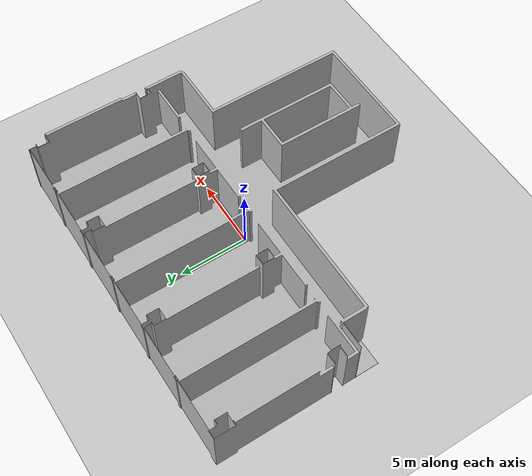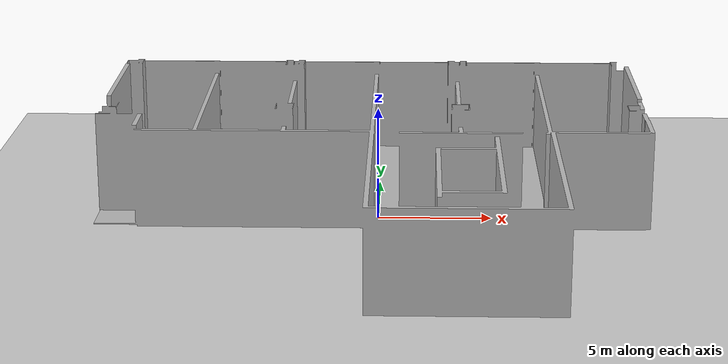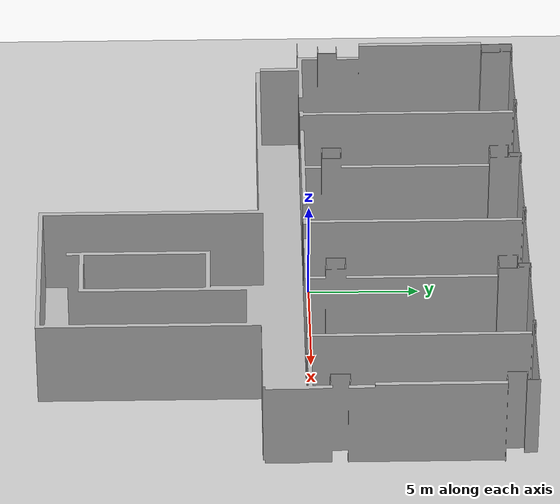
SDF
<?xml version="1.0"?>
<sdf version="1.6">
  <world name="default">

    <include>
      <uri>model://ground_plane</uri>
    </include>

    <include>
      <uri>model://sun</uri>
    </include>

    <scene>
      <shadows>false</shadows>
    </scene>

    <gui fullscreen='0'>
      <camera name='user_camera'>
        <pose frame=''>0.319654 -0.235002 9.29441 0 1.5138 0.009599</pose>
        <view_controller>orbit</view_controller>
        <projection_type>perspective</projection_type>
      </camera>
    </gui>

    <physics type="ode">
      <real_time_update_rate>1000.0</real_time_update_rate>
      <max_step_size>0.001</max_step_size>
      <real_time_factor>1</real_time_factor>
      <ode>
        <solver>
          <type>quick</type>
          <iters>150</iters>
          <precon_iters>0</precon_iters>
          <sor>1.400000</sor>
          <use_dynamic_moi_rescaling>1</use_dynamic_moi_rescaling>
        </solver>
        <constraints>
          <cfm>0.00001</cfm>
          <erp>0.2</erp>
          <contact_max_correcting_vel>2000.000000</contact_max_correcting_vel>
          <contact_surface_layer>0.01000</contact_surface_layer>
        </constraints>
      </ode>
    </physics>

    <model name="gazebo_flat">
      <static>1</static>
      <include>
        <uri>model://gazebo_flat</uri>
      </include>
    </model>

  </world>
</sdf>

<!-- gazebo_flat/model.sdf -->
<sdf version="1.6">
  <model name="gazebo_flat">
    <static>true</static>
    <link name="link">
      <visual name="visual">
        <geometry>
          <mesh>
            <uri>model://gazebo_flat/meshes/gazebo_flat.dae</uri>
            <scale>1 1 1</scale>
          </mesh>
        </geometry>
      </visual>
      <collision name="collision">
        <geometry>
          <mesh>
            <uri>model://gazebo_flat/meshes/gazebo_flat.dae</uri>
            <scale>1 1 1</scale>
          </mesh>
        </geometry>
      </collision>
    </link>
  </model>
</sdf>
